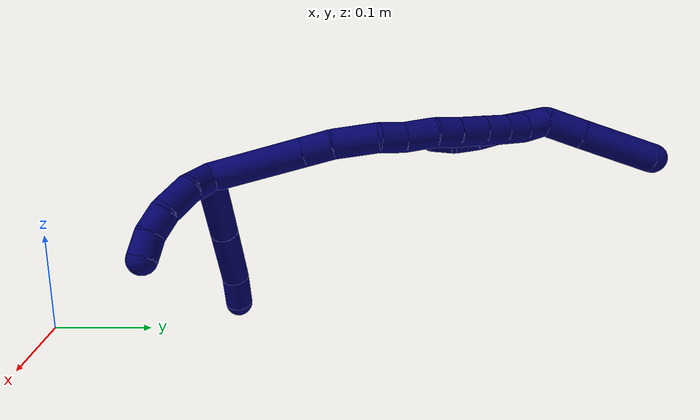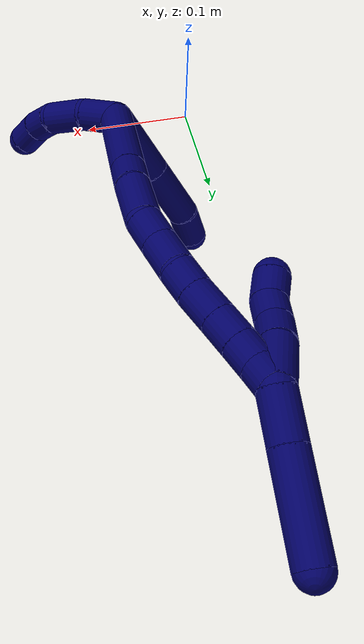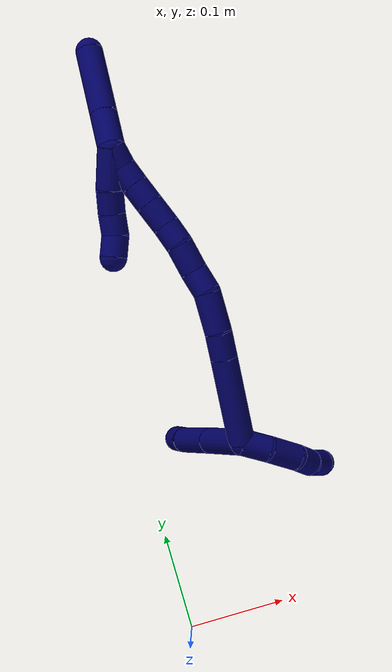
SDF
<sdf version="1.7">
 <world name="default">
  <model name="7">
   <static>0</static>
   <link name="7">
    <collision name="collision-cylinder-e_1_2_8">
     <pose>0.014775 0.026142 -0.008592 -1.88834 0.492745 -0.668659</pose>
     <geometry><cylinder><radius>0.0125</radius><length>0.062466</length></cylinder></geometry>
     <surface>
      <friction><ode><mu>1.16</mu><mu2>1.16</mu2><slip1>0</slip1><slip2>0</slip2></ode></friction>
      <contact><ode><kp>1e+06</kp><kd>1</kd><max_vel>0</max_vel><min_depth>0.001</min_depth></ode></contact>
     </surface>
    </collision>
    <visual name="visual-cylinder-e_1_2_8">
     <pose>0.014775 0.026142 -0.008592 -1.88834 0.492745 -0.668659</pose>
     <geometry><cylinder><radius>0.0125</radius><length>0.062466</length></cylinder></geometry>
     <material><ambient>0.003922 0 0.403922 1</ambient></material>
    </visual>
    <collision name="collision-cylinder-e_2_8_9">
     <pose>0.043135 0.076268 -0.025243 -1.89497 0.492766 -0.673028</pose>
     <geometry><cylinder><radius>0.0125</radius><length>0.057437</length></cylinder></geometry>
     <surface>
      <friction><ode><mu>1.16</mu><mu2>1.16</mu2><slip1>0</slip1><slip2>0</slip2></ode></friction>
      <contact><ode><kp>1e+06</kp><kd>1</kd><max_vel>0</max_vel><min_depth>0.001</min_depth></ode></contact>
     </surface>
    </collision>
    <visual name="visual-cylinder-e_2_8_9">
     <pose>0.043135 0.076268 -0.025243 -1.89497 0.492766 -0.673028</pose>
     <geometry><cylinder><radius>0.0125</radius><length>0.057437</length></cylinder></geometry>
     <material><ambient>0.003922 0 0.403922 1</ambient></material>
    </visual>
    <collision name="collision-cylinder-e_3_9_6">
     <pose>0.066296 0.11109 -0.037462 -1.93725 0.689673 -0.963102</pose>
     <geometry><cylinder><radius>0.0125</radius><length>0.030097</length></cylinder></geometry>
     <surface>
      <friction><ode><mu>1.16</mu><mu2>1.16</mu2><slip1>0</slip1><slip2>0</slip2></ode></friction>
      <contact><ode><kp>1e+06</kp><kd>1</kd><max_vel>0</max_vel><min_depth>0.001</min_depth></ode></contact>
     </surface>
    </collision>
    <visual name="visual-cylinder-e_3_9_6">
     <pose>0.066296 0.11109 -0.037462 -1.93725 0.689673 -0.963102</pose>
     <geometry><cylinder><radius>0.0125</radius><length>0.030097</length></cylinder></geometry>
     <material><ambient>0.003922 0 0.403922 1</ambient></material>
    </visual>
    <collision name="collision-cylinder-e_1_2_10">
     <pose>0.007853 -0.01005 -0.003901 1.94107 0.629546 0.887971</pose>
     <geometry><cylinder><radius>0.0125</radius><length>0.026675</length></cylinder></geometry>
     <surface>
      <friction><ode><mu>1.16</mu><mu2>1.16</mu2><slip1>0</slip1><slip2>0</slip2></ode></friction>
      <contact><ode><kp>1e+06</kp><kd>1</kd><max_vel>0</max_vel><min_depth>0.001</min_depth></ode></contact>
     </surface>
    </collision>
    <visual name="visual-cylinder-e_1_2_10">
     <pose>0.007853 -0.01005 -0.003901 1.94107 0.629546 0.887971</pose>
     <geometry><cylinder><radius>0.0125</radius><length>0.026675</length></cylinder></geometry>
     <material><ambient>0.003922 0 0.403922 1</ambient></material>
    </visual>
    <collision name="collision-cylinder-e_2_10_11">
     <pose>0.027362 -0.02838 -0.013736 2.19263 0.852603 1.44806</pose>
     <geometry><cylinder><radius>0.0125</radius><length>0.030961</length></cylinder></geometry>
     <surface>
      <friction><ode><mu>1.16</mu><mu2>1.16</mu2><slip1>0</slip1><slip2>0</slip2></ode></friction>
      <contact><ode><kp>1e+06</kp><kd>1</kd><max_vel>0</max_vel><min_depth>0.001</min_depth></ode></contact>
     </surface>
    </collision>
    <visual name="visual-cylinder-e_2_10_11">
     <pose>0.027362 -0.02838 -0.013736 2.19263 0.852603 1.44806</pose>
     <geometry><cylinder><radius>0.0125</radius><length>0.030961</length></cylinder></geometry>
     <material><ambient>0.003922 0 0.403922 1</ambient></material>
    </visual>
    <collision name="collision-cylinder-e_3_11_12">
     <pose>0.048212 -0.039003 -0.024663 2.70275 1.03044 2.39121</pose>
     <geometry><cylinder><radius>0.0125</radius><length>0.021441</length></cylinder></geometry>
     <surface>
      <friction><ode><mu>1.16</mu><mu2>1.16</mu2><slip1>0</slip1><slip2>0</slip2></ode></friction>
      <contact><ode><kp>1e+06</kp><kd>1</kd><max_vel>0</max_vel><min_depth>0.001</min_depth></ode></contact>
     </surface>
    </collision>
    <visual name="visual-cylinder-e_3_11_12">
     <pose>0.048212 -0.039003 -0.024663 2.70275 1.03044 2.39121</pose>
     <geometry><cylinder><radius>0.0125</radius><length>0.021441</length></cylinder></geometry>
     <material><ambient>0.003922 0 0.403922 1</ambient></material>
    </visual>
    <collision name="collision-cylinder-e_4_12_5">
     <pose>0.067415 -0.042168 -0.032584 2.86801 1.2757 2.77435</pose>
     <geometry><cylinder><radius>0.0125</radius><length>0.020923</length></cylinder></geometry>
     <surface>
      <friction><ode><mu>1.16</mu><mu2>1.16</mu2><slip1>0</slip1><slip2>0</slip2></ode></friction>
      <contact><ode><kp>1e+06</kp><kd>1</kd><max_vel>0</max_vel><min_depth>0.001</min_depth></ode></contact>
     </surface>
    </collision>
    <visual name="visual-cylinder-e_4_12_5">
     <pose>0.067415 -0.042168 -0.032584 2.86801 1.2757 2.77435</pose>
     <geometry><cylinder><radius>0.0125</radius><length>0.020923</length></cylinder></geometry>
     <material><ambient>0.003922 0 0.403922 1</ambient></material>
    </visual>
    <collision name="collision-cylinder-e_1_2_13">
     <pose>-0.005088 0.00675 0.040544 -0.164975 -0.123157 0.010195</pose>
     <geometry><cylinder><radius>0.0125</radius><length>0.082832</length></cylinder></geometry>
     <surface>
      <friction><ode><mu>1.16</mu><mu2>1.16</mu2><slip1>0</slip1><slip2>0</slip2></ode></friction>
      <contact><ode><kp>1e+06</kp><kd>1</kd><max_vel>0</max_vel><min_depth>0.001</min_depth></ode></contact>
     </surface>
    </collision>
    <visual name="visual-cylinder-e_1_2_13">
     <pose>-0.005088 0.00675 0.040544 -0.164975 -0.123157 0.010195</pose>
     <geometry><cylinder><radius>0.0125</radius><length>0.082832</length></cylinder></geometry>
     <material><ambient>0.003922 0 0.403922 1</ambient></material>
    </visual>
    <collision name="collision-cylinder-e_2_13_14">
     <pose>-0.011693 0.015549 0.093017 -0.170127 -0.124703 0.010647</pose>
     <geometry><cylinder><radius>0.0125</radius><length>0.024395</length></cylinder></geometry>
     <surface>
      <friction><ode><mu>1.16</mu><mu2>1.16</mu2><slip1>0</slip1><slip2>0</slip2></ode></friction>
      <contact><ode><kp>1e+06</kp><kd>1</kd><max_vel>0</max_vel><min_depth>0.001</min_depth></ode></contact>
     </surface>
    </collision>
    <visual name="visual-cylinder-e_2_13_14">
     <pose>-0.011693 0.015549 0.093017 -0.170127 -0.124703 0.010647</pose>
     <geometry><cylinder><radius>0.0125</radius><length>0.024395</length></cylinder></geometry>
     <material><ambient>0.003922 0 0.403922 1</ambient></material>
    </visual>
    <collision name="collision-cylinder-e_3_14_15">
     <pose>-0.014208 0.02302 0.122797 -0.294819 -0.053468 0.007941</pose>
     <geometry><cylinder><radius>0.0125</radius><length>0.037368</length></cylinder></geometry>
     <surface>
      <friction><ode><mu>1.16</mu><mu2>1.16</mu2><slip1>0</slip1><slip2>0</slip2></ode></friction>
      <contact><ode><kp>1e+06</kp><kd>1</kd><max_vel>0</max_vel><min_depth>0.001</min_depth></ode></contact>
     </surface>
    </collision>
    <visual name="visual-cylinder-e_3_14_15">
     <pose>-0.014208 0.02302 0.122797 -0.294819 -0.053468 0.007941</pose>
     <geometry><cylinder><radius>0.0125</radius><length>0.037368</length></cylinder></geometry>
     <material><ambient>0.003922 0 0.403922 1</ambient></material>
    </visual>
    <collision name="collision-cylinder-e_4_15_16">
     <pose>-0.015934 0.03493 0.149637 -0.625341 -0.06552 0.021188</pose>
     <geometry><cylinder><radius>0.0125</radius><length>0.022218</length></cylinder></geometry>
     <surface>
      <friction><ode><mu>1.16</mu><mu2>1.16</mu2><slip1>0</slip1><slip2>0</slip2></ode></friction>
      <contact><ode><kp>1e+06</kp><kd>1</kd><max_vel>0</max_vel><min_depth>0.001</min_depth></ode></contact>
     </surface>
    </collision>
    <visual name="visual-cylinder-e_4_15_16">
     <pose>-0.015934 0.03493 0.149637 -0.625341 -0.06552 0.021188</pose>
     <geometry><cylinder><radius>0.0125</radius><length>0.022218</length></cylinder></geometry>
     <material><ambient>0.003922 0 0.403922 1</ambient></material>
    </visual>
    <collision name="collision-cylinder-e_5_16_17">
     <pose>-0.018861 0.047666 0.170394 -0.487987 -0.163629 0.040822</pose>
     <geometry><cylinder><radius>0.0125</radius><length>0.027009</length></cylinder></geometry>
     <surface>
      <friction><ode><mu>1.16</mu><mu2>1.16</mu2><slip1>0</slip1><slip2>0</slip2></ode></friction>
      <contact><ode><kp>1e+06</kp><kd>1</kd><max_vel>0</max_vel><min_depth>0.001</min_depth></ode></contact>
     </surface>
    </collision>
    <visual name="visual-cylinder-e_5_16_17">
     <pose>-0.018861 0.047666 0.170394 -0.487987 -0.163629 0.040822</pose>
     <geometry><cylinder><radius>0.0125</radius><length>0.027009</length></cylinder></geometry>
     <material><ambient>0.003922 0 0.403922 1</ambient></material>
    </visual>
    <collision name="collision-cylinder-e_6_17_18">
     <pose>-0.021971 0.060293 0.190083 -0.678118 -0.089168 0.031466</pose>
     <geometry><cylinder><radius>0.0125</radius><length>0.020423</length></cylinder></geometry>
     <surface>
      <friction><ode><mu>1.16</mu><mu2>1.16</mu2><slip1>0</slip1><slip2>0</slip2></ode></friction>
      <contact><ode><kp>1e+06</kp><kd>1</kd><max_vel>0</max_vel><min_depth>0.001</min_depth></ode></contact>
     </surface>
    </collision>
    <visual name="visual-cylinder-e_6_17_18">
     <pose>-0.021971 0.060293 0.190083 -0.678118 -0.089168 0.031466</pose>
     <geometry><cylinder><radius>0.0125</radius><length>0.020423</length></cylinder></geometry>
     <material><ambient>0.003922 0 0.403922 1</ambient></material>
    </visual>
    <collision name="collision-cylinder-e_7_18_19">
     <pose>-0.02475 0.074407 0.207341 -0.691675 -0.153028 0.055233</pose>
     <geometry><cylinder><radius>0.0125</radius><length>0.024535</length></cylinder></geometry>
     <surface>
      <friction><ode><mu>1.16</mu><mu2>1.16</mu2><slip1>0</slip1><slip2>0</slip2></ode></friction>
      <contact><ode><kp>1e+06</kp><kd>1</kd><max_vel>0</max_vel><min_depth>0.001</min_depth></ode></contact>
     </surface>
    </collision>
    <visual name="visual-cylinder-e_7_18_19">
     <pose>-0.02475 0.074407 0.207341 -0.691675 -0.153028 0.055233</pose>
     <geometry><cylinder><radius>0.0125</radius><length>0.024535</length></cylinder></geometry>
     <material><ambient>0.003922 0 0.403922 1</ambient></material>
    </visual>
    <collision name="collision-cylinder-e_8_19_20">
     <pose>-0.028155 0.088802 0.224792 -0.687483 -0.145187 0.05205</pose>
     <geometry><cylinder><radius>0.0125</radius><length>0.021219</length></cylinder></geometry>
     <surface>
      <friction><ode><mu>1.16</mu><mu2>1.16</mu2><slip1>0</slip1><slip2>0</slip2></ode></friction>
      <contact><ode><kp>1e+06</kp><kd>1</kd><max_vel>0</max_vel><min_depth>0.001</min_depth></ode></contact>
     </surface>
    </collision>
    <visual name="visual-cylinder-e_8_19_20">
     <pose>-0.028155 0.088802 0.224792 -0.687483 -0.145187 0.05205</pose>
     <geometry><cylinder><radius>0.0125</radius><length>0.021219</length></cylinder></geometry>
     <material><ambient>0.003922 0 0.403922 1</ambient></material>
    </visual>
    <collision name="collision-cylinder-e_9_20_21">
     <pose>-0.031253 0.101477 0.240742 -0.654542 -0.157004 0.053397</pose>
     <geometry><cylinder><radius>0.0125</radius><length>0.02</length></cylinder></geometry>
     <surface>
      <friction><ode><mu>1.16</mu><mu2>1.16</mu2><slip1>0</slip1><slip2>0</slip2></ode></friction>
      <contact><ode><kp>1e+06</kp><kd>1</kd><max_vel>0</max_vel><min_depth>0.001</min_depth></ode></contact>
     </surface>
    </collision>
    <visual name="visual-cylinder-e_9_20_21">
     <pose>-0.031253 0.101477 0.240742 -0.654542 -0.157004 0.053397</pose>
     <geometry><cylinder><radius>0.0125</radius><length>0.02</length></cylinder></geometry>
     <material><ambient>0.003922 0 0.403922 1</ambient></material>
    </visual>
    <collision name="collision-cylinder-e_10_21_1">
     <pose>-0.035469 0.111292 0.257438 -0.405333 -0.268415 0.055475</pose>
     <geometry><cylinder><radius>0.0125</radius><length>0.02</length></cylinder></geometry>
     <surface>
      <friction><ode><mu>1.16</mu><mu2>1.16</mu2><slip1>0</slip1><slip2>0</slip2></ode></friction>
      <contact><ode><kp>1e+06</kp><kd>1</kd><max_vel>0</max_vel><min_depth>0.001</min_depth></ode></contact>
     </surface>
    </collision>
    <visual name="visual-cylinder-e_10_21_1">
     <pose>-0.035469 0.111292 0.257438 -0.405333 -0.268415 0.055475</pose>
     <geometry><cylinder><radius>0.0125</radius><length>0.02</length></cylinder></geometry>
     <material><ambient>0.003922 0 0.403922 1</ambient></material>
    </visual>
    <collision name="collision-cylinder-e_1_1_22">
     <pose>-0.039169 0.115613 0.247413 -3.11415 -0.05543 2.22247</pose>
     <geometry><cylinder><radius>0.0125</radius><length>0.037844</length></cylinder></geometry>
     <surface>
      <friction><ode><mu>1.16</mu><mu2>1.16</mu2><slip1>0</slip1><slip2>0</slip2></ode></friction>
      <contact><ode><kp>1e+06</kp><kd>1</kd><max_vel>0</max_vel><min_depth>0.001</min_depth></ode></contact>
     </surface>
    </collision>
    <visual name="visual-cylinder-e_1_1_22">
     <pose>-0.039169 0.115613 0.247413 -3.11415 -0.05543 2.22247</pose>
     <geometry><cylinder><radius>0.0125</radius><length>0.037844</length></cylinder></geometry>
     <material><ambient>0.003922 0 0.403922 1</ambient></material>
    </visual>
    <collision name="collision-cylinder-e_2_22_23">
     <pose>-0.03938 0.115821 0.217786 3.11268 0.07778 2.4301</pose>
     <geometry><cylinder><radius>0.0125</radius><length>0.021556</length></cylinder></geometry>
     <surface>
      <friction><ode><mu>1.16</mu><mu2>1.16</mu2><slip1>0</slip1><slip2>0</slip2></ode></friction>
      <contact><ode><kp>1e+06</kp><kd>1</kd><max_vel>0</max_vel><min_depth>0.001</min_depth></ode></contact>
     </surface>
    </collision>
    <visual name="visual-cylinder-e_2_22_23">
     <pose>-0.03938 0.115821 0.217786 3.11268 0.07778 2.4301</pose>
     <geometry><cylinder><radius>0.0125</radius><length>0.021556</length></cylinder></geometry>
     <material><ambient>0.003922 0 0.403922 1</ambient></material>
    </visual>
    <collision name="collision-cylinder-e_3_23_24">
     <pose>-0.038489 0.113729 0.197096 2.96448 0.005345 0.060182</pose>
     <geometry><cylinder><radius>0.0125</radius><length>0.020215</length></cylinder></geometry>
     <surface>
      <friction><ode><mu>1.16</mu><mu2>1.16</mu2><slip1>0</slip1><slip2>0</slip2></ode></friction>
      <contact><ode><kp>1e+06</kp><kd>1</kd><max_vel>0</max_vel><min_depth>0.001</min_depth></ode></contact>
     </surface>
    </collision>
    <visual name="visual-cylinder-e_3_23_24">
     <pose>-0.038489 0.113729 0.197096 2.96448 0.005345 0.060182</pose>
     <geometry><cylinder><radius>0.0125</radius><length>0.020215</length></cylinder></geometry>
     <material><ambient>0.003922 0 0.403922 1</ambient></material>
    </visual>
    <collision name="collision-cylinder-e_4_24_4">
     <pose>-0.04133 0.111111 0.17741 3.05583 -0.288001 -2.56619</pose>
     <geometry><cylinder><radius>0.0125</radius><length>0.020385</length></cylinder></geometry>
     <surface>
      <friction><ode><mu>1.16</mu><mu2>1.16</mu2><slip1>0</slip1><slip2>0</slip2></ode></friction>
      <contact><ode><kp>1e+06</kp><kd>1</kd><max_vel>0</max_vel><min_depth>0.001</min_depth></ode></contact>
     </surface>
    </collision>
    <visual name="visual-cylinder-e_4_24_4">
     <pose>-0.04133 0.111111 0.17741 3.05583 -0.288001 -2.56619</pose>
     <geometry><cylinder><radius>0.0125</radius><length>0.020385</length></cylinder></geometry>
     <material><ambient>0.003922 0 0.403922 1</ambient></material>
    </visual>
    <collision name="collision-cylinder-e_1_1_25">
     <pose>-0.032294 0.123302 0.27982 -0.545536 0.352998 -0.099703</pose>
     <geometry><cylinder><radius>0.0125</radius><length>0.033712</length></cylinder></geometry>
     <surface>
      <friction><ode><mu>1.16</mu><mu2>1.16</mu2><slip1>0</slip1><slip2>0</slip2></ode></friction>
      <contact><ode><kp>1e+06</kp><kd>1</kd><max_vel>0</max_vel><min_depth>0.001</min_depth></ode></contact>
     </surface>
    </collision>
    <visual name="visual-cylinder-e_1_1_25">
     <pose>-0.032294 0.123302 0.27982 -0.545536 0.352998 -0.099703</pose>
     <geometry><cylinder><radius>0.0125</radius><length>0.033712</length></cylinder></geometry>
     <material><ambient>0.003922 0 0.403922 1</ambient></material>
    </visual>
    <collision name="collision-cylinder-e_2_25_3">
     <pose>-0.015246 0.147567 0.320075 -0.540911 0.345373 -0.096642</pose>
     <geometry><cylinder><radius>0.0125</radius><length>0.066288</length></cylinder></geometry>
     <surface>
      <friction><ode><mu>1.16</mu><mu2>1.16</mu2><slip1>0</slip1><slip2>0</slip2></ode></friction>
      <contact><ode><kp>1e+06</kp><kd>1</kd><max_vel>0</max_vel><min_depth>0.001</min_depth></ode></contact>
     </surface>
    </collision>
    <visual name="visual-cylinder-e_2_25_3">
     <pose>-0.015246 0.147567 0.320075 -0.540911 0.345373 -0.096642</pose>
     <geometry><cylinder><radius>0.0125</radius><length>0.066288</length></cylinder></geometry>
     <material><ambient>0.003922 0 0.403922 1</ambient></material>
    </visual>
    <collision name="collision-sphere-3">
     <pose>-0.004025 0.163626 0.34681 0 -0 0</pose>
     <geometry><sphere><radius>0.0125</radius></sphere></geometry>
     <surface>
      <friction><ode><mu>1.16</mu><mu2>1.16</mu2><slip1>0</slip1><slip2>0</slip2></ode></friction>
      <contact><ode><kp>1e+06</kp><kd>1</kd><max_vel>0</max_vel><min_depth>0.001</min_depth></ode></contact>
     </surface>
    </collision>
    <visual name="visual-sphere-3">
     <pose>-0.004025 0.163626 0.34681 0 -0 0</pose>
     <geometry><sphere><radius>0.0125</radius></sphere></geometry>
     <material><ambient>0.003922 0 0.403922 1</ambient></material>
    </visual>
    <collision name="collision-sphere-25">
     <pose>-0.026466 0.131509 0.293341 0 -0 0</pose>
     <geometry><sphere><radius>0.0125</radius></sphere></geometry>
     <surface>
      <friction><ode><mu>1.16</mu><mu2>1.16</mu2><slip1>0</slip1><slip2>0</slip2></ode></friction>
      <contact><ode><kp>1e+06</kp><kd>1</kd><max_vel>0</max_vel><min_depth>0.001</min_depth></ode></contact>
     </surface>
    </collision>
    <visual name="visual-sphere-25">
     <pose>-0.026466 0.131509 0.293341 0 -0 0</pose>
     <geometry><sphere><radius>0.0125</radius></sphere></geometry>
     <material><ambient>0.003922 0 0.403922 1</ambient></material>
    </visual>
    <collision name="collision-sphere-4">
     <pose>-0.044225 0.110274 0.167673 0 -0 0</pose>
     <geometry><sphere><radius>0.0125</radius></sphere></geometry>
     <surface>
      <friction><ode><mu>1.16</mu><mu2>1.16</mu2><slip1>0</slip1><slip2>0</slip2></ode></friction>
      <contact><ode><kp>1e+06</kp><kd>1</kd><max_vel>0</max_vel><min_depth>0.001</min_depth></ode></contact>
     </surface>
    </collision>
    <visual name="visual-sphere-4">
     <pose>-0.044225 0.110274 0.167673 0 -0 0</pose>
     <geometry><sphere><radius>0.0125</radius></sphere></geometry>
     <material><ambient>0.003922 0 0.403922 1</ambient></material>
    </visual>
    <collision name="collision-sphere-24">
     <pose>-0.038435 0.111948 0.187147 0 -0 0</pose>
     <geometry><sphere><radius>0.0125</radius></sphere></geometry>
     <surface>
      <friction><ode><mu>1.16</mu><mu2>1.16</mu2><slip1>0</slip1><slip2>0</slip2></ode></friction>
      <contact><ode><kp>1e+06</kp><kd>1</kd><max_vel>0</max_vel><min_depth>0.001</min_depth></ode></contact>
     </surface>
    </collision>
    <visual name="visual-sphere-24">
     <pose>-0.038435 0.111948 0.187147 0 -0 0</pose>
     <geometry><sphere><radius>0.0125</radius></sphere></geometry>
     <material><ambient>0.003922 0 0.403922 1</ambient></material>
    </visual>
    <collision name="collision-sphere-23">
     <pose>-0.038543 0.11551 0.207045 0 -0 0</pose>
     <geometry><sphere><radius>0.0125</radius></sphere></geometry>
     <surface>
      <friction><ode><mu>1.16</mu><mu2>1.16</mu2><slip1>0</slip1><slip2>0</slip2></ode></friction>
      <contact><ode><kp>1e+06</kp><kd>1</kd><max_vel>0</max_vel><min_depth>0.001</min_depth></ode></contact>
     </surface>
    </collision>
    <visual name="visual-sphere-23">
     <pose>-0.038543 0.11551 0.207045 0 -0 0</pose>
     <geometry><sphere><radius>0.0125</radius></sphere></geometry>
     <material><ambient>0.003922 0 0.403922 1</ambient></material>
    </visual>
    <collision name="collision-sphere-22">
     <pose>-0.040218 0.116131 0.228527 0 -0 0</pose>
     <geometry><sphere><radius>0.0125</radius></sphere></geometry>
     <surface>
      <friction><ode><mu>1.16</mu><mu2>1.16</mu2><slip1>0</slip1><slip2>0</slip2></ode></friction>
      <contact><ode><kp>1e+06</kp><kd>1</kd><max_vel>0</max_vel><min_depth>0.001</min_depth></ode></contact>
     </surface>
    </collision>
    <visual name="visual-sphere-22">
     <pose>-0.040218 0.116131 0.228527 0 -0 0</pose>
     <geometry><sphere><radius>0.0125</radius></sphere></geometry>
     <material><ambient>0.003922 0 0.403922 1</ambient></material>
    </visual>
    <collision name="collision-sphere-1">
     <pose>-0.038121 0.115095 0.266299 0 -0 0</pose>
     <geometry><sphere><radius>0.0125</radius></sphere></geometry>
     <surface>
      <friction><ode><mu>1.16</mu><mu2>1.16</mu2><slip1>0</slip1><slip2>0</slip2></ode></friction>
      <contact><ode><kp>1e+06</kp><kd>1</kd><max_vel>0</max_vel><min_depth>0.001</min_depth></ode></contact>
     </surface>
    </collision>
    <visual name="visual-sphere-1">
     <pose>-0.038121 0.115095 0.266299 0 -0 0</pose>
     <geometry><sphere><radius>0.0125</radius></sphere></geometry>
     <material><ambient>0.003922 0 0.403922 1</ambient></material>
    </visual>
    <collision name="collision-sphere-21">
     <pose>-0.032817 0.10749 0.248577 0 -0 0</pose>
     <geometry><sphere><radius>0.0125</radius></sphere></geometry>
     <surface>
      <friction><ode><mu>1.16</mu><mu2>1.16</mu2><slip1>0</slip1><slip2>0</slip2></ode></friction>
      <contact><ode><kp>1e+06</kp><kd>1</kd><max_vel>0</max_vel><min_depth>0.001</min_depth></ode></contact>
     </surface>
    </collision>
    <visual name="visual-sphere-21">
     <pose>-0.032817 0.10749 0.248577 0 -0 0</pose>
     <geometry><sphere><radius>0.0125</radius></sphere></geometry>
     <material><ambient>0.003922 0 0.403922 1</ambient></material>
    </visual>
    <collision name="collision-sphere-11">
     <pose>0.039019 -0.036659 -0.01967 0 -0 0</pose>
     <geometry><sphere><radius>0.0125</radius></sphere></geometry>
     <surface>
      <friction><ode><mu>1.16</mu><mu2>1.16</mu2><slip1>0</slip1><slip2>0</slip2></ode></friction>
      <contact><ode><kp>1e+06</kp><kd>1</kd><max_vel>0</max_vel><min_depth>0.001</min_depth></ode></contact>
     </surface>
    </collision>
    <visual name="visual-sphere-11">
     <pose>0.039019 -0.036659 -0.01967 0 -0 0</pose>
     <geometry><sphere><radius>0.0125</radius></sphere></geometry>
     <material><ambient>0.003922 0 0.403922 1</ambient></material>
    </visual>
    <collision name="collision-sphere-10">
     <pose>0.015706 -0.0201 -0.007802 0 -0 0</pose>
     <geometry><sphere><radius>0.0125</radius></sphere></geometry>
     <surface>
      <friction><ode><mu>1.16</mu><mu2>1.16</mu2><slip1>0</slip1><slip2>0</slip2></ode></friction>
      <contact><ode><kp>1e+06</kp><kd>1</kd><max_vel>0</max_vel><min_depth>0.001</min_depth></ode></contact>
     </surface>
    </collision>
    <visual name="visual-sphere-10">
     <pose>0.015706 -0.0201 -0.007802 0 -0 0</pose>
     <geometry><sphere><radius>0.0125</radius></sphere></geometry>
     <material><ambient>0.003922 0 0.403922 1</ambient></material>
    </visual>
    <collision name="collision-sphere-6">
     <pose>0.075871 0.121928 -0.041622 0 -0 0</pose>
     <geometry><sphere><radius>0.0125</radius></sphere></geometry>
     <surface>
      <friction><ode><mu>1.16</mu><mu2>1.16</mu2><slip1>0</slip1><slip2>0</slip2></ode></friction>
      <contact><ode><kp>1e+06</kp><kd>1</kd><max_vel>0</max_vel><min_depth>0.001</min_depth></ode></contact>
     </surface>
    </collision>
    <visual name="visual-sphere-6">
     <pose>0.075871 0.121928 -0.041622 0 -0 0</pose>
     <geometry><sphere><radius>0.0125</radius></sphere></geometry>
     <material><ambient>0.003922 0 0.403922 1</ambient></material>
    </visual>
    <collision name="collision-sphere-9">
     <pose>0.056721 0.100252 -0.033302 0 -0 0</pose>
     <geometry><sphere><radius>0.0125</radius></sphere></geometry>
     <surface>
      <friction><ode><mu>1.16</mu><mu2>1.16</mu2><slip1>0</slip1><slip2>0</slip2></ode></friction>
      <contact><ode><kp>1e+06</kp><kd>1</kd><max_vel>0</max_vel><min_depth>0.001</min_depth></ode></contact>
     </surface>
    </collision>
    <visual name="visual-sphere-9">
     <pose>0.056721 0.100252 -0.033302 0 -0 0</pose>
     <geometry><sphere><radius>0.0125</radius></sphere></geometry>
     <material><ambient>0.003922 0 0.403922 1</ambient></material>
    </visual>
    <collision name="collision-sphere-2">
     <geometry><sphere><radius>0.0125</radius></sphere></geometry>
     <surface>
      <friction><ode><mu>1.16</mu><mu2>1.16</mu2><slip1>0</slip1><slip2>0</slip2></ode></friction>
      <contact><ode><kp>1e+06</kp><kd>1</kd><max_vel>0</max_vel><min_depth>0.001</min_depth></ode></contact>
     </surface>
    </collision>
    <visual name="visual-sphere-2">
     <geometry><sphere><radius>0.0125</radius></sphere></geometry>
     <material><ambient>0.003922 0 0.403922 1</ambient></material>
    </visual>
    <collision name="collision-sphere-19">
     <pose>-0.02662 0.08214 0.216679 0 -0 0</pose>
     <geometry><sphere><radius>0.0125</radius></sphere></geometry>
     <surface>
      <friction><ode><mu>1.16</mu><mu2>1.16</mu2><slip1>0</slip1><slip2>0</slip2></ode></friction>
      <contact><ode><kp>1e+06</kp><kd>1</kd><max_vel>0</max_vel><min_depth>0.001</min_depth></ode></contact>
     </surface>
    </collision>
    <visual name="visual-sphere-19">
     <pose>-0.02662 0.08214 0.216679 0 -0 0</pose>
     <geometry><sphere><radius>0.0125</radius></sphere></geometry>
     <material><ambient>0.003922 0 0.403922 1</ambient></material>
    </visual>
    <collision name="collision-sphere-8">
     <pose>0.029549 0.052284 -0.017184 0 -0 0</pose>
     <geometry><sphere><radius>0.0125</radius></sphere></geometry>
     <surface>
      <friction><ode><mu>1.16</mu><mu2>1.16</mu2><slip1>0</slip1><slip2>0</slip2></ode></friction>
      <contact><ode><kp>1e+06</kp><kd>1</kd><max_vel>0</max_vel><min_depth>0.001</min_depth></ode></contact>
     </surface>
    </collision>
    <visual name="visual-sphere-8">
     <pose>0.029549 0.052284 -0.017184 0 -0 0</pose>
     <geometry><sphere><radius>0.0125</radius></sphere></geometry>
     <material><ambient>0.003922 0 0.403922 1</ambient></material>
    </visual>
    <collision name="collision-sphere-12">
     <pose>0.057405 -0.041346 -0.029655 0 -0 0</pose>
     <geometry><sphere><radius>0.0125</radius></sphere></geometry>
     <surface>
      <friction><ode><mu>1.16</mu><mu2>1.16</mu2><slip1>0</slip1><slip2>0</slip2></ode></friction>
      <contact><ode><kp>1e+06</kp><kd>1</kd><max_vel>0</max_vel><min_depth>0.001</min_depth></ode></contact>
     </surface>
    </collision>
    <visual name="visual-sphere-12">
     <pose>0.057405 -0.041346 -0.029655 0 -0 0</pose>
     <geometry><sphere><radius>0.0125</radius></sphere></geometry>
     <material><ambient>0.003922 0 0.403922 1</ambient></material>
    </visual>
    <collision name="collision-sphere-5">
     <pose>0.077424 -0.04299 -0.035514 0 -0 0</pose>
     <geometry><sphere><radius>0.0125</radius></sphere></geometry>
     <surface>
      <friction><ode><mu>1.16</mu><mu2>1.16</mu2><slip1>0</slip1><slip2>0</slip2></ode></friction>
      <contact><ode><kp>1e+06</kp><kd>1</kd><max_vel>0</max_vel><min_depth>0.001</min_depth></ode></contact>
     </surface>
    </collision>
    <visual name="visual-sphere-5">
     <pose>0.077424 -0.04299 -0.035514 0 -0 0</pose>
     <geometry><sphere><radius>0.0125</radius></sphere></geometry>
     <material><ambient>0.003922 0 0.403922 1</ambient></material>
    </visual>
    <collision name="collision-sphere-13">
     <pose>-0.010176 0.0135 0.081089 0 -0 0</pose>
     <geometry><sphere><radius>0.0125</radius></sphere></geometry>
     <surface>
      <friction><ode><mu>1.16</mu><mu2>1.16</mu2><slip1>0</slip1><slip2>0</slip2></ode></friction>
      <contact><ode><kp>1e+06</kp><kd>1</kd><max_vel>0</max_vel><min_depth>0.001</min_depth></ode></contact>
     </surface>
    </collision>
    <visual name="visual-sphere-13">
     <pose>-0.010176 0.0135 0.081089 0 -0 0</pose>
     <geometry><sphere><radius>0.0125</radius></sphere></geometry>
     <material><ambient>0.003922 0 0.403922 1</ambient></material>
    </visual>
    <collision name="collision-sphere-14">
     <pose>-0.01321 0.017598 0.104945 0 -0 0</pose>
     <geometry><sphere><radius>0.0125</radius></sphere></geometry>
     <surface>
      <friction><ode><mu>1.16</mu><mu2>1.16</mu2><slip1>0</slip1><slip2>0</slip2></ode></friction>
      <contact><ode><kp>1e+06</kp><kd>1</kd><max_vel>0</max_vel><min_depth>0.001</min_depth></ode></contact>
     </surface>
    </collision>
    <visual name="visual-sphere-14">
     <pose>-0.01321 0.017598 0.104945 0 -0 0</pose>
     <geometry><sphere><radius>0.0125</radius></sphere></geometry>
     <material><ambient>0.003922 0 0.403922 1</ambient></material>
    </visual>
    <collision name="collision-sphere-15">
     <pose>-0.015207 0.028441 0.14065 0 -0 0</pose>
     <geometry><sphere><radius>0.0125</radius></sphere></geometry>
     <surface>
      <friction><ode><mu>1.16</mu><mu2>1.16</mu2><slip1>0</slip1><slip2>0</slip2></ode></friction>
      <contact><ode><kp>1e+06</kp><kd>1</kd><max_vel>0</max_vel><min_depth>0.001</min_depth></ode></contact>
     </surface>
    </collision>
    <visual name="visual-sphere-15">
     <pose>-0.015207 0.028441 0.14065 0 -0 0</pose>
     <geometry><sphere><radius>0.0125</radius></sphere></geometry>
     <material><ambient>0.003922 0 0.403922 1</ambient></material>
    </visual>
    <collision name="collision-sphere-16">
     <pose>-0.016662 0.041419 0.158625 0 -0 0</pose>
     <geometry><sphere><radius>0.0125</radius></sphere></geometry>
     <surface>
      <friction><ode><mu>1.16</mu><mu2>1.16</mu2><slip1>0</slip1><slip2>0</slip2></ode></friction>
      <contact><ode><kp>1e+06</kp><kd>1</kd><max_vel>0</max_vel><min_depth>0.001</min_depth></ode></contact>
     </surface>
    </collision>
    <visual name="visual-sphere-16">
     <pose>-0.016662 0.041419 0.158625 0 -0 0</pose>
     <geometry><sphere><radius>0.0125</radius></sphere></geometry>
     <material><ambient>0.003922 0 0.403922 1</ambient></material>
    </visual>
    <collision name="collision-sphere-17">
     <pose>-0.021061 0.053913 0.182162 0 -0 0</pose>
     <geometry><sphere><radius>0.0125</radius></sphere></geometry>
     <surface>
      <friction><ode><mu>1.16</mu><mu2>1.16</mu2><slip1>0</slip1><slip2>0</slip2></ode></friction>
      <contact><ode><kp>1e+06</kp><kd>1</kd><max_vel>0</max_vel><min_depth>0.001</min_depth></ode></contact>
     </surface>
    </collision>
    <visual name="visual-sphere-17">
     <pose>-0.021061 0.053913 0.182162 0 -0 0</pose>
     <geometry><sphere><radius>0.0125</radius></sphere></geometry>
     <material><ambient>0.003922 0 0.403922 1</ambient></material>
    </visual>
    <collision name="collision-sphere-18">
     <pose>-0.02288 0.066674 0.198003 0 -0 0</pose>
     <geometry><sphere><radius>0.0125</radius></sphere></geometry>
     <surface>
      <friction><ode><mu>1.16</mu><mu2>1.16</mu2><slip1>0</slip1><slip2>0</slip2></ode></friction>
      <contact><ode><kp>1e+06</kp><kd>1</kd><max_vel>0</max_vel><min_depth>0.001</min_depth></ode></contact>
     </surface>
    </collision>
    <visual name="visual-sphere-18">
     <pose>-0.02288 0.066674 0.198003 0 -0 0</pose>
     <geometry><sphere><radius>0.0125</radius></sphere></geometry>
     <material><ambient>0.003922 0 0.403922 1</ambient></material>
    </visual>
    <collision name="collision-sphere-20">
     <pose>-0.02969 0.095464 0.232906 0 -0 0</pose>
     <geometry><sphere><radius>0.0125</radius></sphere></geometry>
     <surface>
      <friction><ode><mu>1.16</mu><mu2>1.16</mu2><slip1>0</slip1><slip2>0</slip2></ode></friction>
      <contact><ode><kp>1e+06</kp><kd>1</kd><max_vel>0</max_vel><min_depth>0.001</min_depth></ode></contact>
     </surface>
    </collision>
    <visual name="visual-sphere-20">
     <pose>-0.02969 0.095464 0.232906 0 -0 0</pose>
     <geometry><sphere><radius>0.0125</radius></sphere></geometry>
     <material><ambient>0.003922 0 0.403922 1</ambient></material>
    </visual>
    <inertial>
     <pose>-0.002991 0.0599 0.119068 0 -0 0</pose>
     <mass>0.75</mass>
     <inertia>
      <ixx>0.000121</ixx>
      <ixy>0</ixy>
      <ixz>0</ixz>
      <iyy>0.00011</iyy>
      <iyz>0</iyz>
      <izz>-8.1e-05</izz>
     </inertia>
    </inertial>
   </link>
   <pose>0.104711 0.18678 0.181727 -1.09794 0.950855 0.10782</pose>
  </model>
 </world>
</sdf>
